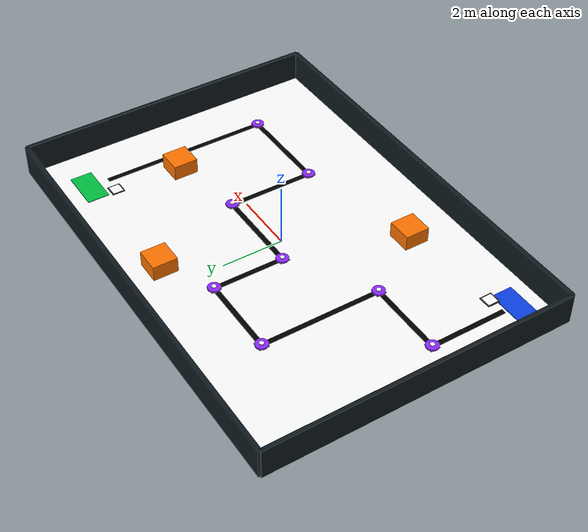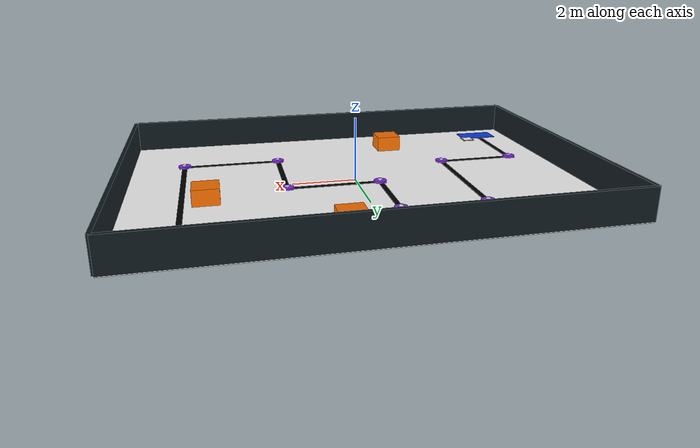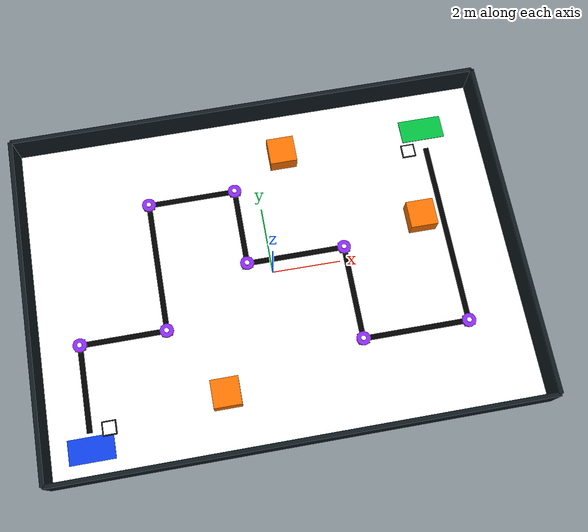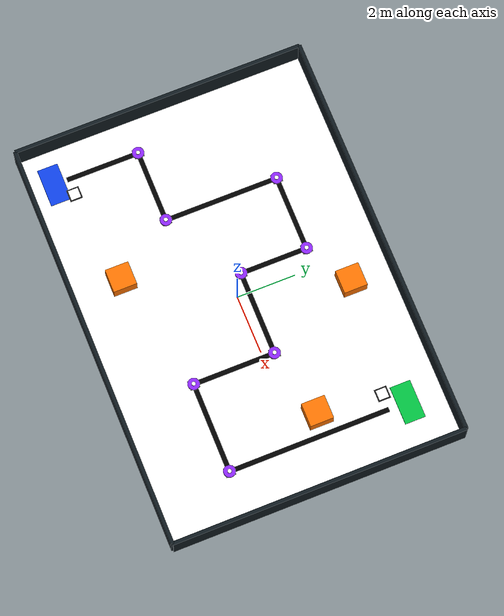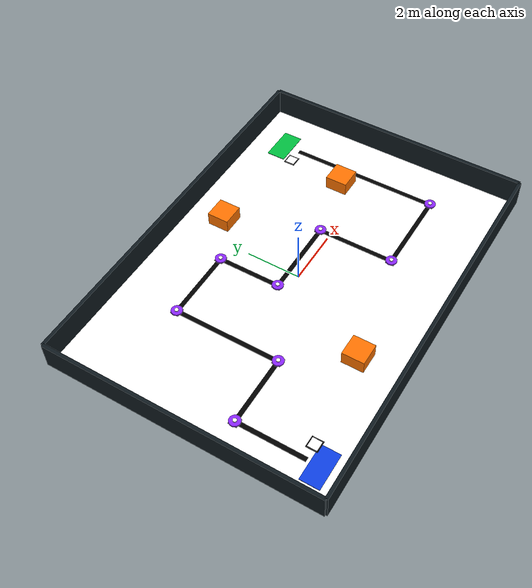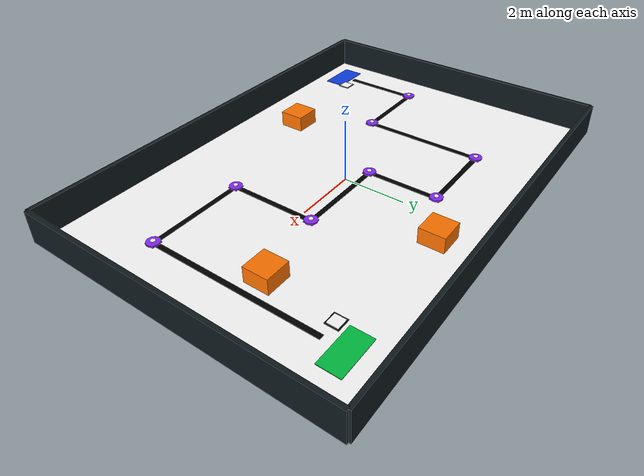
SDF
<?xml version="1.0" ?>
<sdf version="1.9">
  <world name="hamals_line_following_world">
    <physics name="1ms" type="ignored">
      <max_step_size>0.001</max_step_size>
      <real_time_factor>1.0</real_time_factor>
    </physics>

    <plugin filename="gz-sim-physics-system" name="gz::sim::systems::Physics"/>
    <plugin filename="gz-sim-user-commands-system" name="gz::sim::systems::UserCommands"/>
    <plugin filename="gz-sim-scene-broadcaster-system" name="gz::sim::systems::SceneBroadcaster"/>

    <plugin filename="gz-sim-sensors-system" name="gz::sim::systems::Sensors">
      <render_engine>ogre2</render_engine>
    </plugin>

    <scene>
      <ambient>0.80 0.80 0.80 1</ambient>
      <background>0.85 0.85 0.85 1</background>
      <shadows>true</shadows>
    </scene>

    <light type="directional" name="sun">
      <cast_shadows>true</cast_shadows>
      <pose>0 0 10 0 0 0</pose>
      <diffuse>0.85 0.85 0.85 1</diffuse>
      <specular>0.2 0.2 0.2 1</specular>
      <attenuation>
        <range>1000</range>
        <constant>0.9</constant>
        <linear>0.01</linear>
        <quadratic>0.001</quadratic>
      </attenuation>
      <direction>-0.5 0.1 -0.9</direction>
    </light>

    <!-- White floor + black continuous line-following track. All direction changes are 90 degrees. -->

    <model name="line_following_floor">
      <static>true</static>
      <pose>0.000 0.000 -0.025 0 0 0</pose>
      <link name="link">
        <collision name="collision">
          <geometry>
            <box><size>14.000 10.000 0.050</size></box>
          </geometry>
        </collision>
        <visual name="visual">
          <geometry>
            <box><size>14.000 10.000 0.050</size></box>
          </geometry>
          <material>
            <ambient>1 1 1 1</ambient>
            <diffuse>1 1 1 1</diffuse>
          </material>
        </visual>
      </link>
    </model>

    <model name="outer_wall_north">
      <static>true</static>
      <pose>0.000 5.000 0.500 0 0 0</pose>
      <link name="link">
        <collision name="collision">
          <geometry>
            <box><size>14.000 0.120 1.000</size></box>
          </geometry>
        </collision>
        <visual name="visual">
          <geometry>
            <box><size>14.000 0.120 1.000</size></box>
          </geometry>
          <material>
            <ambient>0.06 0.1 0.12 1</ambient>
            <diffuse>0.06 0.1 0.12 1</diffuse>
          </material>
        </visual>
      </link>
    </model>

    <model name="outer_wall_south">
      <static>true</static>
      <pose>0.000 -5.000 0.500 0 0 0</pose>
      <link name="link">
        <collision name="collision">
          <geometry>
            <box><size>14.000 0.120 1.000</size></box>
          </geometry>
        </collision>
        <visual name="visual">
          <geometry>
            <box><size>14.000 0.120 1.000</size></box>
          </geometry>
          <material>
            <ambient>0.06 0.1 0.12 1</ambient>
            <diffuse>0.06 0.1 0.12 1</diffuse>
          </material>
        </visual>
      </link>
    </model>

    <model name="outer_wall_west">
      <static>true</static>
      <pose>-7.000 0.000 0.500 0 0 0</pose>
      <link name="link">
        <collision name="collision">
          <geometry>
            <box><size>0.120 10.000 1.000</size></box>
          </geometry>
        </collision>
        <visual name="visual">
          <geometry>
            <box><size>0.120 10.000 1.000</size></box>
          </geometry>
          <material>
            <ambient>0.06 0.1 0.12 1</ambient>
            <diffuse>0.06 0.1 0.12 1</diffuse>
          </material>
        </visual>
      </link>
    </model>

    <model name="outer_wall_east">
      <static>true</static>
      <pose>7.000 0.000 0.500 0 0 0</pose>
      <link name="link">
        <collision name="collision">
          <geometry>
            <box><size>0.120 10.000 1.000</size></box>
          </geometry>
        </collision>
        <visual name="visual">
          <geometry>
            <box><size>0.120 10.000 1.000</size></box>
          </geometry>
          <material>
            <ambient>0.06 0.1 0.12 1</ambient>
            <diffuse>0.06 0.1 0.12 1</diffuse>
          </material>
        </visual>
      </link>
    </model>

    <model name="line_01_start_up">
      <static>true</static>
      <pose>-5.800 -2.450 0.025 0 0 0</pose>
      <link name="link">
        <visual name="visual">
          <geometry>
            <box><size>0.160 2.500 0.014</size></box>
          </geometry>
          <material>
            <ambient>0 0 0 1</ambient>
            <diffuse>0 0 0 1</diffuse>
          </material>
        </visual>
      </link>
    </model>

    <model name="line_02_right">
      <static>true</static>
      <pose>-4.550 -1.200 0.025 0 0 0</pose>
      <link name="link">
        <visual name="visual">
          <geometry>
            <box><size>2.500 0.160 0.014</size></box>
          </geometry>
          <material>
            <ambient>0 0 0 1</ambient>
            <diffuse>0 0 0 1</diffuse>
          </material>
        </visual>
      </link>
    </model>

    <model name="line_03_up">
      <static>true</static>
      <pose>-3.300 0.750 0.025 0 0 0</pose>
      <link name="link">
        <visual name="visual">
          <geometry>
            <box><size>0.160 3.900 0.014</size></box>
          </geometry>
          <material>
            <ambient>0 0 0 1</ambient>
            <diffuse>0 0 0 1</diffuse>
          </material>
        </visual>
      </link>
    </model>

    <model name="line_04_right">
      <static>true</static>
      <pose>-2.000 2.700 0.025 0 0 0</pose>
      <link name="link">
        <visual name="visual">
          <geometry>
            <box><size>2.600 0.160 0.014</size></box>
          </geometry>
          <material>
            <ambient>0 0 0 1</ambient>
            <diffuse>0 0 0 1</diffuse>
          </material>
        </visual>
      </link>
    </model>

    <model name="line_05_down">
      <static>true</static>
      <pose>-0.700 1.550 0.025 0 0 0</pose>
      <link name="link">
        <visual name="visual">
          <geometry>
            <box><size>0.160 2.300 0.014</size></box>
          </geometry>
          <material>
            <ambient>0 0 0 1</ambient>
            <diffuse>0 0 0 1</diffuse>
          </material>
        </visual>
      </link>
    </model>

    <model name="line_06_right">
      <static>true</static>
      <pose>0.750 0.400 0.025 0 0 0</pose>
      <link name="link">
        <visual name="visual">
          <geometry>
            <box><size>2.900 0.160 0.014</size></box>
          </geometry>
          <material>
            <ambient>0 0 0 1</ambient>
            <diffuse>0 0 0 1</diffuse>
          </material>
        </visual>
      </link>
    </model>

    <model name="line_07_down">
      <static>true</static>
      <pose>2.200 -1.000 0.025 0 0 0</pose>
      <link name="link">
        <visual name="visual">
          <geometry>
            <box><size>0.160 2.800 0.014</size></box>
          </geometry>
          <material>
            <ambient>0 0 0 1</ambient>
            <diffuse>0 0 0 1</diffuse>
          </material>
        </visual>
      </link>
    </model>

    <model name="line_08_right">
      <static>true</static>
      <pose>3.750 -2.400 0.025 0 0 0</pose>
      <link name="link">
        <visual name="visual">
          <geometry>
            <box><size>3.100 0.160 0.014</size></box>
          </geometry>
          <material>
            <ambient>0 0 0 1</ambient>
            <diffuse>0 0 0 1</diffuse>
          </material>
        </visual>
      </link>
    </model>

    <model name="line_09_finish_up">
      <static>true</static>
      <pose>5.300 0.350 0.025 0 0 0</pose>
      <link name="link">
        <visual name="visual">
          <geometry>
            <box><size>0.160 5.500 0.014</size></box>
          </geometry>
          <material>
            <ambient>0 0 0 1</ambient>
            <diffuse>0 0 0 1</diffuse>
          </material>
        </visual>
      </link>
    </model>

    <model name="turn_01">
      <static>true</static>
      <pose>-5.800 -1.200 0.027 0 0 0</pose>
      <link name="link">
        <visual name="visual">
          <geometry>
            <box><size>0.320 0.320 0.016</size></box>
          </geometry>
          <material>
            <ambient>0 0 0 1</ambient>
            <diffuse>0 0 0 1</diffuse>
          </material>
        </visual>
      </link>
    </model>

    <model name="turn_02">
      <static>true</static>
      <pose>-3.300 -1.200 0.027 0 0 0</pose>
      <link name="link">
        <visual name="visual">
          <geometry>
            <box><size>0.320 0.320 0.016</size></box>
          </geometry>
          <material>
            <ambient>0 0 0 1</ambient>
            <diffuse>0 0 0 1</diffuse>
          </material>
        </visual>
      </link>
    </model>

    <model name="turn_03">
      <static>true</static>
      <pose>-3.300 2.700 0.027 0 0 0</pose>
      <link name="link">
        <visual name="visual">
          <geometry>
            <box><size>0.320 0.320 0.016</size></box>
          </geometry>
          <material>
            <ambient>0 0 0 1</ambient>
            <diffuse>0 0 0 1</diffuse>
          </material>
        </visual>
      </link>
    </model>

    <model name="turn_04">
      <static>true</static>
      <pose>-0.700 2.700 0.027 0 0 0</pose>
      <link name="link">
        <visual name="visual">
          <geometry>
            <box><size>0.320 0.320 0.016</size></box>
          </geometry>
          <material>
            <ambient>0 0 0 1</ambient>
            <diffuse>0 0 0 1</diffuse>
          </material>
        </visual>
      </link>
    </model>

    <model name="turn_05">
      <static>true</static>
      <pose>-0.700 0.400 0.027 0 0 0</pose>
      <link name="link">
        <visual name="visual">
          <geometry>
            <box><size>0.320 0.320 0.016</size></box>
          </geometry>
          <material>
            <ambient>0 0 0 1</ambient>
            <diffuse>0 0 0 1</diffuse>
          </material>
        </visual>
      </link>
    </model>

    <model name="turn_06">
      <static>true</static>
      <pose>2.200 0.400 0.027 0 0 0</pose>
      <link name="link">
        <visual name="visual">
          <geometry>
            <box><size>0.320 0.320 0.016</size></box>
          </geometry>
          <material>
            <ambient>0 0 0 1</ambient>
            <diffuse>0 0 0 1</diffuse>
          </material>
        </visual>
      </link>
    </model>

    <model name="turn_07">
      <static>true</static>
      <pose>2.200 -2.400 0.027 0 0 0</pose>
      <link name="link">
        <visual name="visual">
          <geometry>
            <box><size>0.320 0.320 0.016</size></box>
          </geometry>
          <material>
            <ambient>0 0 0 1</ambient>
            <diffuse>0 0 0 1</diffuse>
          </material>
        </visual>
      </link>
    </model>

    <model name="turn_08">
      <static>true</static>
      <pose>5.300 -2.400 0.027 0 0 0</pose>
      <link name="link">
        <visual name="visual">
          <geometry>
            <box><size>0.320 0.320 0.016</size></box>
          </geometry>
          <material>
            <ambient>0 0 0 1</ambient>
            <diffuse>0 0 0 1</diffuse>
          </material>
        </visual>
      </link>
    </model>

    <model name="start_area">
      <static>true</static>
      <pose>-5.800 -4.150 0.012 0 0 0</pose>
      <link name="link">
        <visual name="visual">
          <geometry>
            <box><size>1.300 0.700 0.020</size></box>
          </geometry>
          <material>
            <ambient>0.05 0.25 0.9 1</ambient>
            <diffuse>0.05 0.25 0.9 1</diffuse>
          </material>
        </visual>
      </link>
    </model>

    <model name="finish_area">
      <static>true</static>
      <pose>5.300 3.750 0.012 0 0 0</pose>
      <link name="link">
        <visual name="visual">
          <geometry>
            <box><size>1.300 0.700 0.020</size></box>
          </geometry>
          <material>
            <ambient>0.0 0.75 0.25 1</ambient>
            <diffuse>0.0 0.75 0.25 1</diffuse>
          </material>
        </visual>
      </link>
    </model>

    <model name="obstacle_01">
      <static>true</static>
      <pose>-1.900 -3.300 0.250 0 0 0</pose>
      <link name="link">
        <collision name="collision">
          <geometry>
            <box><size>0.800 0.800 0.500</size></box>
          </geometry>
        </collision>
        <visual name="visual">
          <geometry>
            <box><size>0.800 0.800 0.500</size></box>
          </geometry>
          <material>
            <ambient>1.0 0.45 0.0 1</ambient>
            <diffuse>1.0 0.45 0.0 1</diffuse>
          </material>
        </visual>
      </link>
    </model>

    <model name="obstacle_02">
      <static>true</static>
      <pose>0.900 3.600 0.250 0 0 0</pose>
      <link name="link">
        <collision name="collision">
          <geometry>
            <box><size>0.800 0.800 0.500</size></box>
          </geometry>
        </collision>
        <visual name="visual">
          <geometry>
            <box><size>0.800 0.800 0.500</size></box>
          </geometry>
          <material>
            <ambient>1.0 0.45 0.0 1</ambient>
            <diffuse>1.0 0.45 0.0 1</diffuse>
          </material>
        </visual>
      </link>
    </model>

    <model name="obstacle_03">
      <static>true</static>
      <pose>4.600 0.900 0.250 0 0 0</pose>
      <link name="link">
        <collision name="collision">
          <geometry>
            <box><size>0.800 0.800 0.500</size></box>
          </geometry>
        </collision>
        <visual name="visual">
          <geometry>
            <box><size>0.800 0.800 0.500</size></box>
          </geometry>
          <material>
            <ambient>1.0 0.45 0.0 1</ambient>
            <diffuse>1.0 0.45 0.0 1</diffuse>
          </material>
        </visual>
      </link>
    </model>

    <model name="T1_node_marker">
      <static>true</static>
      <pose>-5.800 -1.200 0.055 0 0 0</pose>
      <link name="link">
        <visual name="visual">
          <geometry>
            <cylinder><radius>0.200</radius><length>0.050</length></cylinder>
          </geometry>
          <material>
            <ambient>0.55 0.15 1.0 1</ambient>
            <diffuse>0.55 0.15 1.0 1</diffuse>
          </material>
        </visual>
      </link>
    </model>

    <model name="T1_node_center">
      <static>true</static>
      <pose>-5.800 -1.200 0.100 0 0 0</pose>
      <link name="link">
        <visual name="visual">
          <geometry>
            <cylinder><radius>0.070</radius><length>0.030</length></cylinder>
          </geometry>
          <material>
            <ambient>1 1 1 1</ambient>
            <diffuse>1 1 1 1</diffuse>
          </material>
        </visual>
      </link>
    </model>

    <model name="T2_node_marker">
      <static>true</static>
      <pose>-3.300 -1.200 0.055 0 0 0</pose>
      <link name="link">
        <visual name="visual">
          <geometry>
            <cylinder><radius>0.200</radius><length>0.050</length></cylinder>
          </geometry>
          <material>
            <ambient>0.55 0.15 1.0 1</ambient>
            <diffuse>0.55 0.15 1.0 1</diffuse>
          </material>
        </visual>
      </link>
    </model>

    <model name="T2_node_center">
      <static>true</static>
      <pose>-3.300 -1.200 0.100 0 0 0</pose>
      <link name="link">
        <visual name="visual">
          <geometry>
            <cylinder><radius>0.070</radius><length>0.030</length></cylinder>
          </geometry>
          <material>
            <ambient>1 1 1 1</ambient>
            <diffuse>1 1 1 1</diffuse>
          </material>
        </visual>
      </link>
    </model>

    <model name="T3_node_marker">
      <static>true</static>
      <pose>-3.300 2.700 0.055 0 0 0</pose>
      <link name="link">
        <visual name="visual">
          <geometry>
            <cylinder><radius>0.200</radius><length>0.050</length></cylinder>
          </geometry>
          <material>
            <ambient>0.55 0.15 1.0 1</ambient>
            <diffuse>0.55 0.15 1.0 1</diffuse>
          </material>
        </visual>
      </link>
    </model>

    <model name="T3_node_center">
      <static>true</static>
      <pose>-3.300 2.700 0.100 0 0 0</pose>
      <link name="link">
        <visual name="visual">
          <geometry>
            <cylinder><radius>0.070</radius><length>0.030</length></cylinder>
          </geometry>
          <material>
            <ambient>1 1 1 1</ambient>
            <diffuse>1 1 1 1</diffuse>
          </material>
        </visual>
      </link>
    </model>

    <model name="T4_node_marker">
      <static>true</static>
      <pose>-0.700 2.700 0.055 0 0 0</pose>
      <link name="link">
        <visual name="visual">
          <geometry>
            <cylinder><radius>0.200</radius><length>0.050</length></cylinder>
          </geometry>
          <material>
            <ambient>0.55 0.15 1.0 1</ambient>
            <diffuse>0.55 0.15 1.0 1</diffuse>
          </material>
        </visual>
      </link>
    </model>

    <model name="T4_node_center">
      <static>true</static>
      <pose>-0.700 2.700 0.100 0 0 0</pose>
      <link name="link">
        <visual name="visual">
          <geometry>
            <cylinder><radius>0.070</radius><length>0.030</length></cylinder>
          </geometry>
          <material>
            <ambient>1 1 1 1</ambient>
            <diffuse>1 1 1 1</diffuse>
          </material>
        </visual>
      </link>
    </model>

    <model name="T5_node_marker">
      <static>true</static>
      <pose>-0.700 0.400 0.055 0 0 0</pose>
      <link name="link">
        <visual name="visual">
          <geometry>
            <cylinder><radius>0.200</radius><length>0.050</length></cylinder>
          </geometry>
          <material>
            <ambient>0.55 0.15 1.0 1</ambient>
            <diffuse>0.55 0.15 1.0 1</diffuse>
          </material>
        </visual>
      </link>
    </model>

    <model name="T5_node_center">
      <static>true</static>
      <pose>-0.700 0.400 0.100 0 0 0</pose>
      <link name="link">
        <visual name="visual">
          <geometry>
            <cylinder><radius>0.070</radius><length>0.030</length></cylinder>
          </geometry>
          <material>
            <ambient>1 1 1 1</ambient>
            <diffuse>1 1 1 1</diffuse>
          </material>
        </visual>
      </link>
    </model>

    <model name="T6_node_marker">
      <static>true</static>
      <pose>2.200 0.400 0.055 0 0 0</pose>
      <link name="link">
        <visual name="visual">
          <geometry>
            <cylinder><radius>0.200</radius><length>0.050</length></cylinder>
          </geometry>
          <material>
            <ambient>0.55 0.15 1.0 1</ambient>
            <diffuse>0.55 0.15 1.0 1</diffuse>
          </material>
        </visual>
      </link>
    </model>

    <model name="T6_node_center">
      <static>true</static>
      <pose>2.200 0.400 0.100 0 0 0</pose>
      <link name="link">
        <visual name="visual">
          <geometry>
            <cylinder><radius>0.070</radius><length>0.030</length></cylinder>
          </geometry>
          <material>
            <ambient>1 1 1 1</ambient>
            <diffuse>1 1 1 1</diffuse>
          </material>
        </visual>
      </link>
    </model>

    <model name="T7_node_marker">
      <static>true</static>
      <pose>2.200 -2.400 0.055 0 0 0</pose>
      <link name="link">
        <visual name="visual">
          <geometry>
            <cylinder><radius>0.200</radius><length>0.050</length></cylinder>
          </geometry>
          <material>
            <ambient>0.55 0.15 1.0 1</ambient>
            <diffuse>0.55 0.15 1.0 1</diffuse>
          </material>
        </visual>
      </link>
    </model>

    <model name="T7_node_center">
      <static>true</static>
      <pose>2.200 -2.400 0.100 0 0 0</pose>
      <link name="link">
        <visual name="visual">
          <geometry>
            <cylinder><radius>0.070</radius><length>0.030</length></cylinder>
          </geometry>
          <material>
            <ambient>1 1 1 1</ambient>
            <diffuse>1 1 1 1</diffuse>
          </material>
        </visual>
      </link>
    </model>

    <model name="T8_node_marker">
      <static>true</static>
      <pose>5.300 -2.400 0.055 0 0 0</pose>
      <link name="link">
        <visual name="visual">
          <geometry>
            <cylinder><radius>0.200</radius><length>0.050</length></cylinder>
          </geometry>
          <material>
            <ambient>0.55 0.15 1.0 1</ambient>
            <diffuse>0.55 0.15 1.0 1</diffuse>
          </material>
        </visual>
      </link>
    </model>

    <model name="T8_node_center">
      <static>true</static>
      <pose>5.300 -2.400 0.100 0 0 0</pose>
      <link name="link">
        <visual name="visual">
          <geometry>
            <cylinder><radius>0.070</radius><length>0.030</length></cylinder>
          </geometry>
          <material>
            <ambient>1 1 1 1</ambient>
            <diffuse>1 1 1 1</diffuse>
          </material>
        </visual>
      </link>
    </model>

    <model name="qr_start_border">
      <static>true</static>
      <pose>-5.250 -3.650 0.031 0 0 0</pose>
      <link name="link">
        <visual name="visual">
          <geometry>
            <box><size>0.420 0.420 0.012</size></box>
          </geometry>
          <material>
            <ambient>0 0 0 1</ambient>
            <diffuse>0 0 0 1</diffuse>
          </material>
        </visual>
      </link>
    </model>

    <model name="qr_start_placeholder">
      <static>true</static>
      <pose>-5.250 -3.650 0.042 0 0 0</pose>
      <link name="link">
        <visual name="visual">
          <geometry>
            <box><size>0.340 0.340 0.014</size></box>
          </geometry>
          <material>
            <ambient>1 1 1 1</ambient>
            <diffuse>1 1 1 1</diffuse>
          </material>
        </visual>
      </link>
    </model>

    <model name="qr_finish_border">
      <static>true</static>
      <pose>4.750 3.100 0.031 0 0 0</pose>
      <link name="link">
        <visual name="visual">
          <geometry>
            <box><size>0.420 0.420 0.012</size></box>
          </geometry>
          <material>
            <ambient>0 0 0 1</ambient>
            <diffuse>0 0 0 1</diffuse>
          </material>
        </visual>
      </link>
    </model>

    <model name="qr_finish_placeholder">
      <static>true</static>
      <pose>4.750 3.100 0.042 0 0 0</pose>
      <link name="link">
        <visual name="visual">
          <geometry>
            <box><size>0.340 0.340 0.014</size></box>
          </geometry>
          <material>
            <ambient>1 1 1 1</ambient>
            <diffuse>1 1 1 1</diffuse>
          </material>
        </visual>
      </link>
    </model>

  </world>
</sdf>
